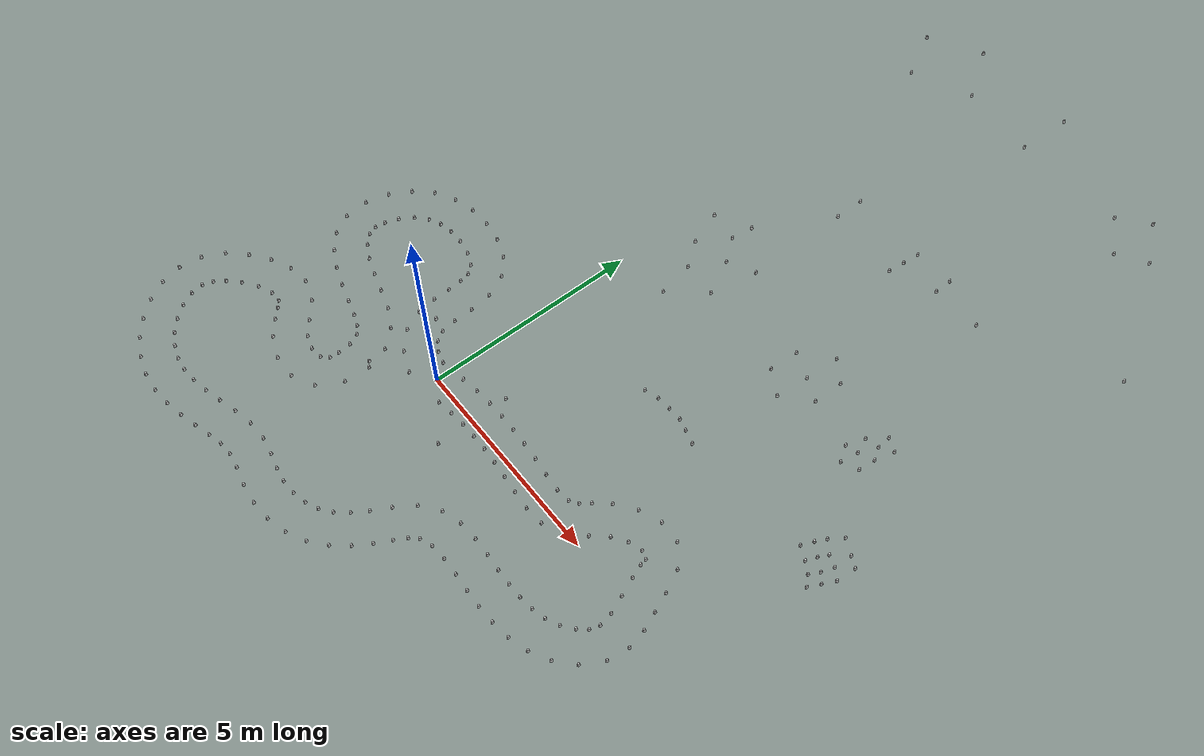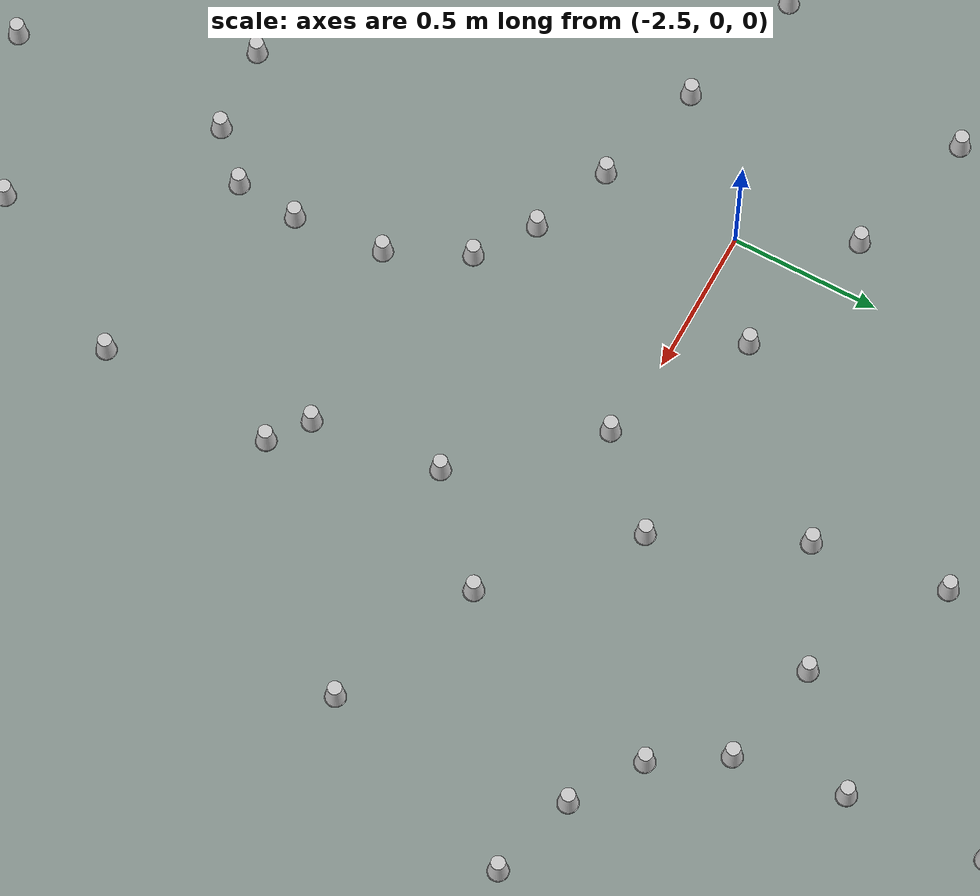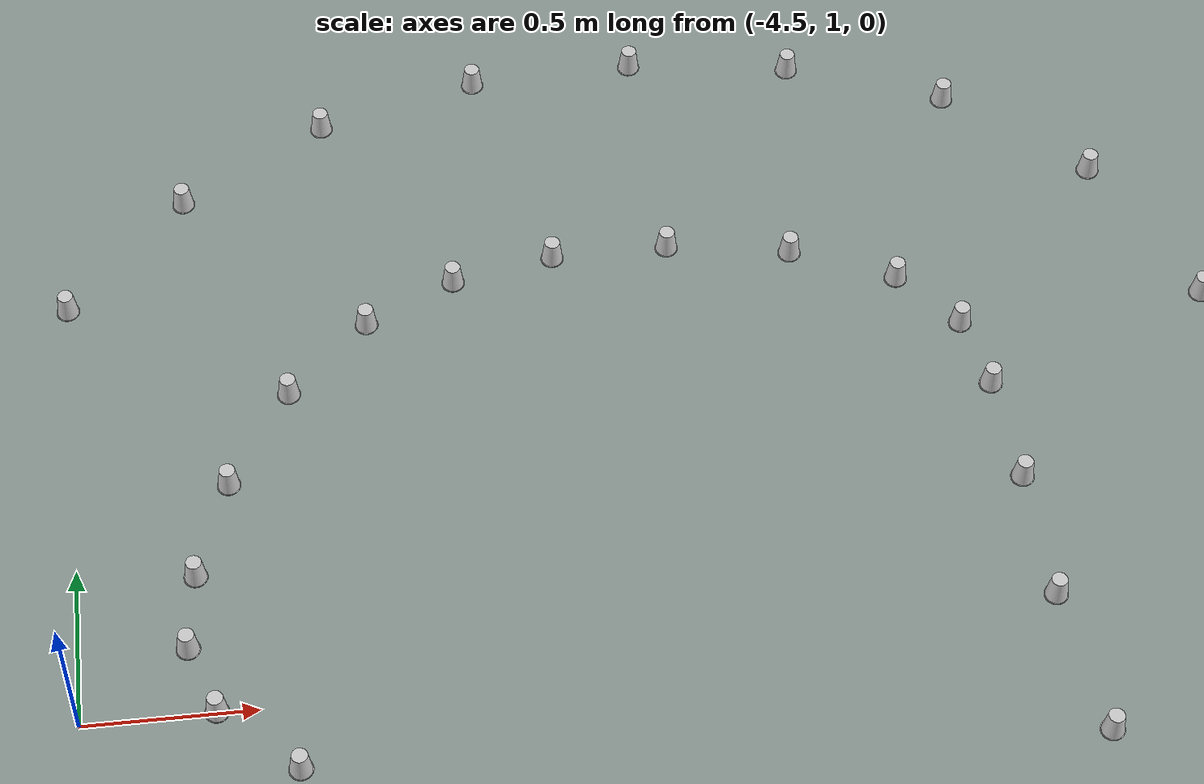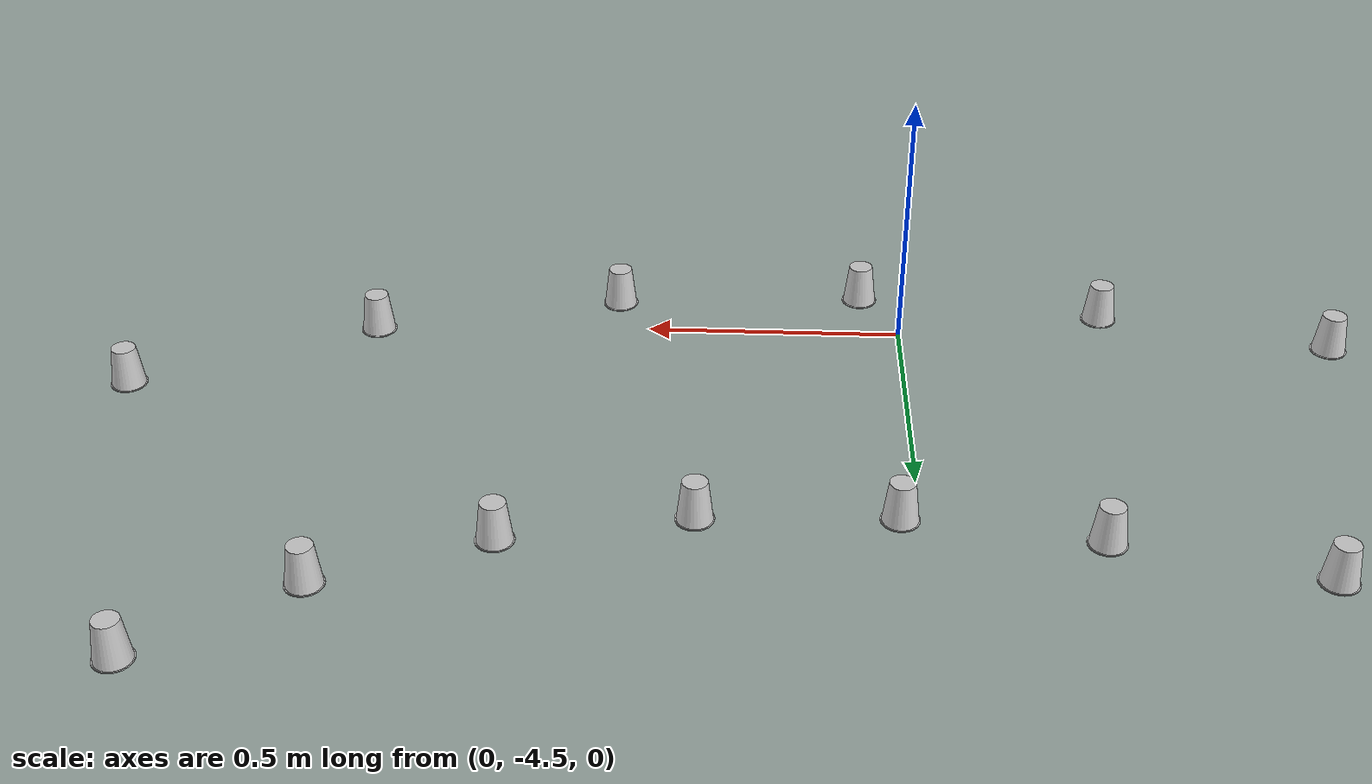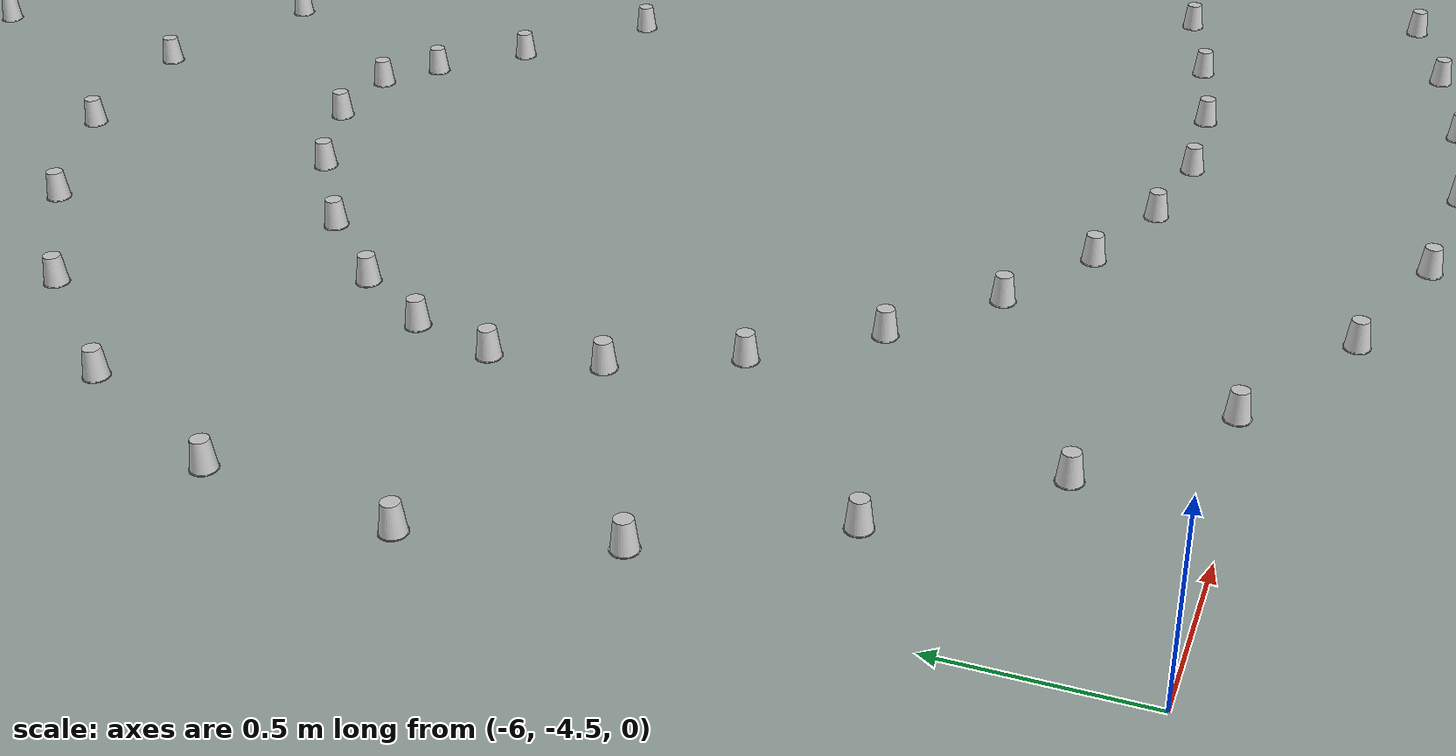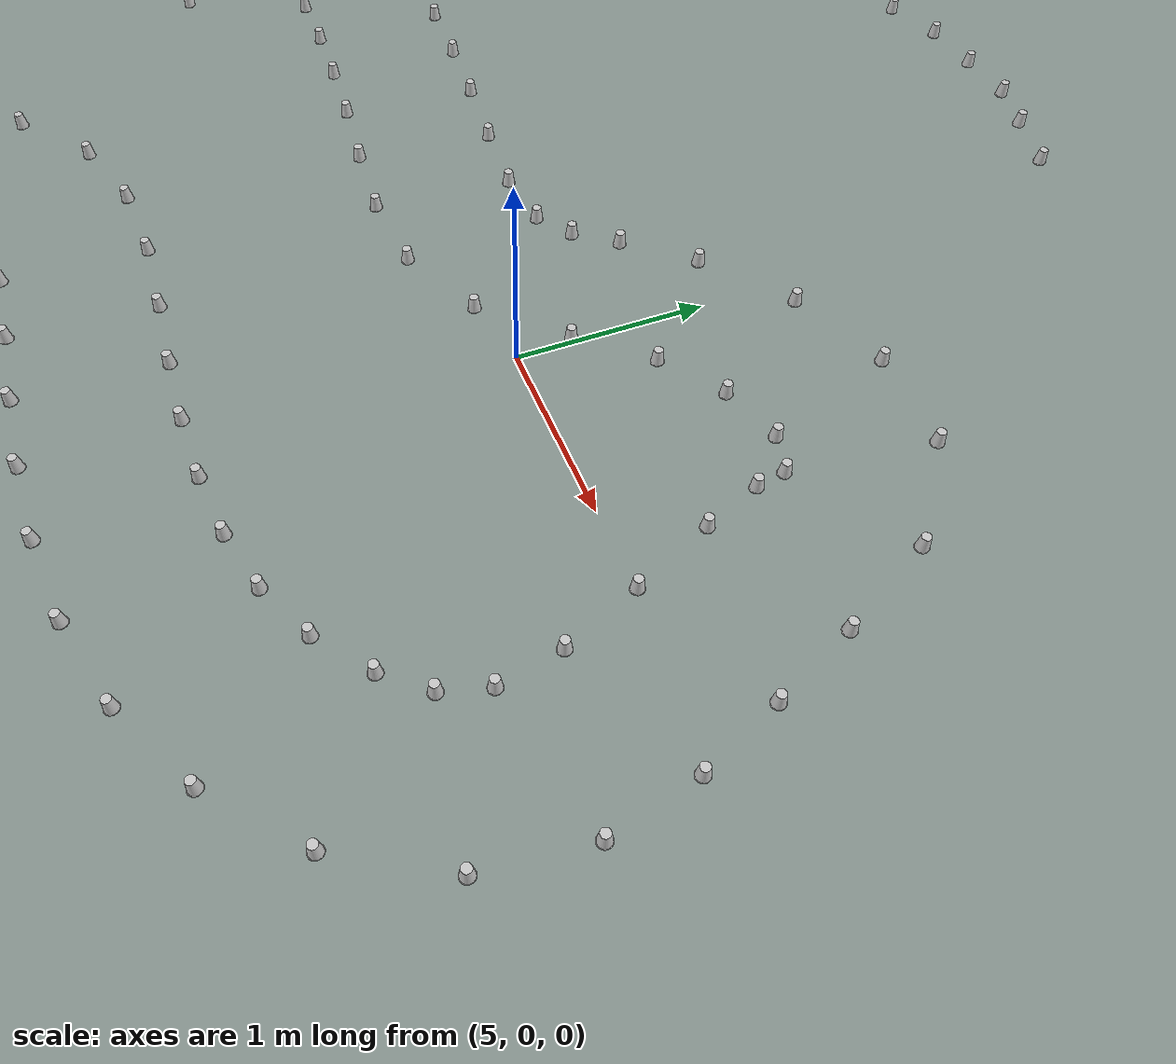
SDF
<?xml version='1.0' encoding='UTF-8'?>
<sdf version="1.4">
  <model name="some track">
    <include>
      <uri>model://cone_yellow</uri>
      <pose>0.4834223192615672 -0.28793069182123604 0 0 0 0</pose>
      <name>cone_right1</name>
    </include>
    <include>
      <uri>model://cone_yellow</uri>
      <pose>0.8660148553454698 -0.23472476890380725 0 0 0 0</pose>
      <name>cone_right2</name>
    </include>
    <include>
      <uri>model://cone_yellow</uri>
      <pose>1.2432822658689044 -0.20220780749883546 0 0 0 0</pose>
      <name>cone_right3</name>
    </include>
    <include>
      <uri>model://cone_yellow</uri>
      <pose>1.6203555029901875 -0.1884271734964398 0 0 0 0</pose>
      <name>cone_right4</name>
    </include>
    <include>
      <uri>model://cone_yellow</uri>
      <pose>2.0023037663141636 -0.19158308370193497 0 0 0 0</pose>
      <name>cone_right5</name>
    </include>
    <include>
      <uri>model://cone_yellow</uri>
      <pose>2.394023457823989 -0.20998335203586982 0 0 0 0</pose>
      <name>cone_right6</name>
    </include>
    <include>
      <uri>model://cone_yellow</uri>
      <pose>2.800177084140201 -0.2419735489785014 0 0 0 0</pose>
      <name>cone_right7</name>
    </include>
    <include>
      <uri>model://cone_yellow</uri>
      <pose>3.2251920668368412 -0.2857320720363028 0 0 0 0</pose>
      <name>cone_right8</name>
    </include>
    <include>
      <uri>model://cone_yellow</uri>
      <pose>3.673081133831503 -0.32136723357678976 0 0 0 0</pose>
      <name>cone_right9</name>
    </include>
    <include>
      <uri>model://cone_yellow</uri>
      <pose>4.139131296335913 -0.2862608365216882 0 0 0 0</pose>
      <name>cone_right10</name>
    </include>
    <include>
      <uri>model://cone_yellow</uri>
      <pose>4.604527058499592 -0.07937368283623886 0 0 0 0</pose>
      <name>cone_right11</name>
    </include>
    <include>
      <uri>model://cone_yellow</uri>
      <pose>4.976737265968248 0.2970096066480042 0 0 0 0</pose>
      <name>cone_right12</name>
    </include>
    <include>
      <uri>model://cone_yellow</uri>
      <pose>5.267185332768795 0.6315184053167547 0 0 0 0</pose>
      <name>cone_right13</name>
    </include>
    <include>
      <uri>model://cone_yellow</uri>
      <pose>5.581061234147173 0.846763641960613 0 0 0 0</pose>
      <name>cone_right14</name>
    </include>
    <include>
      <uri>model://cone_yellow</uri>
      <pose>5.904009847384209 0.9416676785124869 0 0 0 0</pose>
      <name>cone_right15</name>
    </include>
    <include>
      <uri>model://cone_yellow</uri>
      <pose>6.105918938256118 0.8783726840546857 0 0 0 0</pose>
      <name>cone_right16</name>
    </include>
    <include>
      <uri>model://cone_yellow</uri>
      <pose>6.135263695684905 0.7233950904108926 0 0 0 0</pose>
      <name>cone_right17</name>
    </include>
    <include>
      <uri>model://cone_yellow</uri>
      <pose>6.25472738134689 0.4212970748979713 0 0 0 0</pose>
      <name>cone_right18</name>
    </include>
    <include>
      <uri>model://cone_yellow</uri>
      <pose>6.43651411509581 0.007205503279659603 0 0 0 0</pose>
      <name>cone_right19</name>
    </include>
    <include>
      <uri>model://cone_yellow</uri>
      <pose>6.599344256555836 -0.3875459715878455 0 0 0 0</pose>
      <name>cone_right20</name>
    </include>
    <include>
      <uri>model://cone_yellow</uri>
      <pose>6.663712222514379 -0.709443428472346 0 0 0 0</pose>
      <name>cone_right21</name>
    </include>
    <include>
      <uri>model://cone_yellow</uri>
      <pose>6.599324048439171 -0.9379851255765359 0 0 0 0</pose>
      <name>cone_right22</name>
    </include>
    <include>
      <uri>model://cone_yellow</uri>
      <pose>6.431897919561025 -1.1361516267119594 0 0 0 0</pose>
      <name>cone_right23</name>
    </include>
    <include>
      <uri>model://cone_yellow</uri>
      <pose>6.173526360391975 -1.3369792033253298 0 0 0 0</pose>
      <name>cone_right24</name>
    </include>
    <include>
      <uri>model://cone_yellow</uri>
      <pose>5.872023999189865 -1.4777009239062198 0 0 0 0</pose>
      <name>cone_right25</name>
    </include>
    <include>
      <uri>model://cone_yellow</uri>
      <pose>5.54505084394509 -1.558815601963924 0 0 0 0</pose>
      <name>cone_right26</name>
    </include>
    <include>
      <uri>model://cone_yellow</uri>
      <pose>5.193290986583241 -1.5964953086788238 0 0 0 0</pose>
      <name>cone_right27</name>
    </include>
    <include>
      <uri>model://cone_yellow</uri>
      <pose>4.826379161660787 -1.6032082817775666 0 0 0 0</pose>
      <name>cone_right28</name>
    </include>
    <include>
      <uri>model://cone_yellow</uri>
      <pose>4.444103309965589 -1.5887228256598847 0 0 0 0</pose>
      <name>cone_right29</name>
    </include>
    <include>
      <uri>model://cone_yellow</uri>
      <pose>4.033220373937989 -1.5627023179616848 0 0 0 0</pose>
      <name>cone_right30</name>
    </include>
    <include>
      <uri>model://cone_yellow</uri>
      <pose>3.58654219935439 -1.5438364222533334 0 0 0 0</pose>
      <name>cone_right31</name>
    </include>
    <include>
      <uri>model://cone_yellow</uri>
      <pose>3.119596404151952 -1.5741158007487797 0 0 0 0</pose>
      <name>cone_right32</name>
    </include>
    <include>
      <uri>model://cone_yellow</uri>
      <pose>2.655997785389075 -1.7124643024939594 0 0 0 0</pose>
      <name>cone_right33</name>
    </include>
    <include>
      <uri>model://cone_yellow</uri>
      <pose>2.236074192773585 -2.0349587289181996 0 0 0 0</pose>
      <name>cone_right34</name>
    </include>
    <include>
      <uri>model://cone_yellow</uri>
      <pose>1.9409286831973582 -2.4674854652747924 0 0 0 0</pose>
      <name>cone_right35</name>
    </include>
    <include>
      <uri>model://cone_yellow</uri>
      <pose>1.7227150132841178 -2.86882567085488 0 0 0 0</pose>
      <name>cone_right36</name>
    </include>
    <include>
      <uri>model://cone_yellow</uri>
      <pose>1.5128480568535454 -3.2045241859991442 0 0 0 0</pose>
      <name>cone_right37</name>
    </include>
    <include>
      <uri>model://cone_yellow</uri>
      <pose>1.2839361964917777 -3.4756216948214576 0 0 0 0</pose>
      <name>cone_right38</name>
    </include>
    <include>
      <uri>model://cone_yellow</uri>
      <pose>1.025346851002618 -3.6707709850603862 0 0 0 0</pose>
      <name>cone_right39</name>
    </include>
    <include>
      <uri>model://cone_yellow</uri>
      <pose>0.7266943647255486 -3.8002408303627853 0 0 0 0</pose>
      <name>cone_right40</name>
    </include>
    <include>
      <uri>model://cone_yellow</uri>
      <pose>0.3889141328377584 -3.8741386305097585 0 0 0 0</pose>
      <name>cone_right41</name>
    </include>
    <include>
      <uri>model://cone_yellow</uri>
      <pose>0.03447631676477414 -3.8861739531590285 0 0 0 0</pose>
      <name>cone_right42</name>
    </include>
    <include>
      <uri>model://cone_yellow</uri>
      <pose>-0.3126565326163486 -3.834879413479813 0 0 0 0</pose>
      <name>cone_right43</name>
    </include>
    <include>
      <uri>model://cone_yellow</uri>
      <pose>-0.6775282679452043 -3.7483275354689924 0 0 0 0</pose>
      <name>cone_right44</name>
    </include>
    <include>
      <uri>model://cone_yellow</uri>
      <pose>-1.0993073005211618 -3.679219478593075 0 0 0 0</pose>
      <name>cone_right45</name>
    </include>
    <include>
      <uri>model://cone_yellow</uri>
      <pose>-1.5779179586342182 -3.6942836654222395 0 0 0 0</pose>
      <name>cone_right46</name>
    </include>
    <include>
      <uri>model://cone_yellow</uri>
      <pose>-2.04159627378646 -3.7876419534511863 0 0 0 0</pose>
      <name>cone_right47</name>
    </include>
    <include>
      <uri>model://cone_yellow</uri>
      <pose>-2.4691003271557452 -3.9054175431759433 0 0 0 0</pose>
      <name>cone_right48</name>
    </include>
    <include>
      <uri>model://cone_yellow</uri>
      <pose>-2.8697142835054383 -4.011874292432732 0 0 0 0</pose>
      <name>cone_right49</name>
    </include>
    <include>
      <uri>model://cone_yellow</uri>
      <pose>-3.2495775570546366 -4.0863410510965865 0 0 0 0</pose>
      <name>cone_right50</name>
    </include>
    <include>
      <uri>model://cone_yellow</uri>
      <pose>-3.6062194242117607 -4.110132825315085 0 0 0 0</pose>
      <name>cone_right51</name>
    </include>
    <include>
      <uri>model://cone_yellow</uri>
      <pose>-3.9385928625579196 -4.069407435878303 0 0 0 0</pose>
      <name>cone_right52</name>
    </include>
    <include>
      <uri>model://cone_yellow</uri>
      <pose>-4.255707154273494 -3.9628878544856723 0 0 0 0</pose>
      <name>cone_right53</name>
    </include>
    <include>
      <uri>model://cone_yellow</uri>
      <pose>-4.557744661139464 -3.792834577494556 0 0 0 0</pose>
      <name>cone_right54</name>
    </include>
    <include>
      <uri>model://cone_yellow</uri>
      <pose>-4.83305620551467 -3.5615408337604615 0 0 0 0</pose>
      <name>cone_right55</name>
    </include>
    <include>
      <uri>model://cone_yellow</uri>
      <pose>-5.065753423126327 -3.275981446079383 0 0 0 0</pose>
      <name>cone_right56</name>
    </include>
    <include>
      <uri>model://cone_yellow</uri>
      <pose>-5.221155126720023 -2.96531115513226 0 0 0 0</pose>
      <name>cone_right57</name>
    </include>
    <include>
      <uri>model://cone_yellow</uri>
      <pose>-5.265796354457953 -2.6736742489879526 0 0 0 0</pose>
      <name>cone_right58</name>
    </include>
    <include>
      <uri>model://cone_yellow</uri>
      <pose>-5.194714715346289 -2.434991175228284 0 0 0 0</pose>
      <name>cone_right59</name>
    </include>
    <include>
      <uri>model://cone_yellow</uri>
      <pose>-5.033061724898891 -2.1984383723184213 0 0 0 0</pose>
      <name>cone_right60</name>
    </include>
    <include>
      <uri>model://cone_yellow</uri>
      <pose>-4.778987591015468 -1.9468451058664602 0 0 0 0</pose>
      <name>cone_right61</name>
    </include>
    <include>
      <uri>model://cone_yellow</uri>
      <pose>-4.4557435328719865 -1.7172150168994182 0 0 0 0</pose>
      <name>cone_right62</name>
    </include>
    <include>
      <uri>model://cone_yellow</uri>
      <pose>-4.122959751248334 -1.5747262960258581 0 0 0 0</pose>
      <name>cone_right63</name>
    </include>
    <include>
      <uri>model://cone_yellow</uri>
      <pose>-3.855399161594351 -1.5673658953342788 0 0 0 0</pose>
      <name>cone_right64</name>
    </include>
    <include>
      <uri>model://cone_yellow</uri>
      <pose>-3.705501102214204 -1.6827017731366363 0 0 0 0</pose>
      <name>cone_right65</name>
    </include>
    <include>
      <uri>model://cone_yellow</uri>
      <pose>-3.4912117779128153 -1.8883441670213146 0 0 0 0</pose>
      <name>cone_right66</name>
    </include>
    <include>
      <uri>model://cone_yellow</uri>
      <pose>-3.133366615658319 -2.166263093393713 0 0 0 0</pose>
      <name>cone_right67</name>
    </include>
    <include>
      <uri>model://cone_yellow</uri>
      <pose>-2.6122782458438554 -2.376817070417715 0 0 0 0</pose>
      <name>cone_right68</name>
    </include>
    <include>
      <uri>model://cone_yellow</uri>
      <pose>-2.0396847017017596 -2.388498783711688 0 0 0 0</pose>
      <name>cone_right69</name>
    </include>
    <include>
      <uri>model://cone_yellow</uri>
      <pose>-1.516827608909085 -2.1246758055559147 0 0 0 0</pose>
      <name>cone_right70</name>
    </include>
    <include>
      <uri>model://cone_yellow</uri>
      <pose>-1.2044264523644719 -1.567148076507246 0 0 0 0</pose>
      <name>cone_right71</name>
    </include>
    <include>
      <uri>model://cone_yellow</uri>
      <pose>-1.1738020031487055 -0.9679770421285014 0 0 0 0</pose>
      <name>cone_right72</name>
    </include>
    <include>
      <uri>model://cone_yellow</uri>
      <pose>-1.3483379372796278 -0.43987944011843827 0 0 0 0</pose>
      <name>cone_right73</name>
    </include>
    <include>
      <uri>model://cone_yellow</uri>
      <pose>-1.7194188894715186 -0.0353240646921445 0 0 0 0</pose>
      <name>cone_right74</name>
    </include>
    <include>
      <uri>model://cone_yellow</uri>
      <pose>-2.1949865960549353 0.20701489058752226 0 0 0 0</pose>
      <name>cone_right75</name>
    </include>
    <include>
      <uri>model://cone_yellow</uri>
      <pose>-2.6801436556942395 0.35390620786064936 0 0 0 0</pose>
      <name>cone_right76</name>
    </include>
    <include>
      <uri>model://cone_yellow</uri>
      <pose>-3.14157054821582 0.48218941301005097 0 0 0 0</pose>
      <name>cone_right77</name>
    </include>
    <include>
      <uri>model://cone_yellow</uri>
      <pose>-3.5600716158219807 0.6282610463792289 0 0 0 0</pose>
      <name>cone_right78</name>
    </include>
    <include>
      <uri>model://cone_yellow</uri>
      <pose>-3.901710073388931 0.8038629667743893 0 0 0 0</pose>
      <name>cone_right79</name>
    </include>
    <include>
      <uri>model://cone_yellow</uri>
      <pose>-4.121162388274387 1.0058040518493083 0 0 0 0</pose>
      <name>cone_right80</name>
    </include>
    <include>
      <uri>model://cone_yellow</uri>
      <pose>-4.193049162271053 1.2135009723284285 0 0 0 0</pose>
      <name>cone_right81</name>
    </include>
    <include>
      <uri>model://cone_yellow</uri>
      <pose>-4.163077314678172 1.4483587996315594 0 0 0 0</pose>
      <name>cone_right82</name>
    </include>
    <include>
      <uri>model://cone_yellow</uri>
      <pose>-4.055715705573647 1.7513435080545088 0 0 0 0</pose>
      <name>cone_right83</name>
    </include>
    <include>
      <uri>model://cone_yellow</uri>
      <pose>-3.8645940745152583 2.056464888741824 0 0 0 0</pose>
      <name>cone_right84</name>
    </include>
    <include>
      <uri>model://cone_yellow</uri>
      <pose>-3.6172663337053574 2.289259013026721 0 0 0 0</pose>
      <name>cone_right85</name>
    </include>
    <include>
      <uri>model://cone_yellow</uri>
      <pose>-3.3430740853076277 2.422179756574597 0 0 0 0</pose>
      <name>cone_right86</name>
    </include>
    <include>
      <uri>model://cone_yellow</uri>
      <pose>-3.032335708444849 2.4851807995459736 0 0 0 0</pose>
      <name>cone_right87</name>
    </include>
    <include>
      <uri>model://cone_yellow</uri>
      <pose>-2.6787532317324696 2.4881731694654716 0 0 0 0</pose>
      <name>cone_right88</name>
    </include>
    <include>
      <uri>model://cone_yellow</uri>
      <pose>-2.305514930208221 2.428723455740836 0 0 0 0</pose>
      <name>cone_right89</name>
    </include>
    <include>
      <uri>model://cone_yellow</uri>
      <pose>-1.9979153536963588 2.297098698771249 0 0 0 0</pose>
      <name>cone_right90</name>
    </include>
    <include>
      <uri>model://cone_yellow</uri>
      <pose>-1.8345442467293007 2.108484043669222 0 0 0 0</pose>
      <name>cone_right91</name>
    </include>
    <include>
      <uri>model://cone_yellow</uri>
      <pose>-1.7862677395647566 1.8763450104832124 0 0 0 0</pose>
      <name>cone_right92</name>
    </include>
    <include>
      <uri>model://cone_yellow</uri>
      <pose>-1.7599019814446635 1.5386120124869895 0 0 0 0</pose>
      <name>cone_right93</name>
    </include>
    <include>
      <uri>model://cone_yellow</uri>
      <pose>-1.7464368816722788 1.1346099207590994 0 0 0 0</pose>
      <name>cone_right94</name>
    </include>
    <include>
      <uri>model://cone_yellow</uri>
      <pose>-1.6836857132466971 0.6909103747625038 0 0 0 0</pose>
      <name>cone_right95</name>
    </include>
    <include>
      <uri>model://cone_yellow</uri>
      <pose>-1.4618734143422605 0.22414574540250887 0 0 0 0</pose>
      <name>cone_right96</name>
    </include>
    <include>
      <uri>model://cone_yellow</uri>
      <pose>-1.0417738391041782 -0.15384828249830906 0 0 0 0</pose>
      <name>cone_right97</name>
    </include>
    <include>
      <uri>model://cone_yellow</uri>
      <pose>-0.5330159547797239 -0.3584777253906269 0 0 0 0</pose>
      <name>cone_right98</name>
    </include>
    <include>
      <uri>model://cone_yellow</uri>
      <pose>7.091993094317246 6.616086892085171 0 0 0 0</pose>
      <name>cone_right99</name>
    </include>
    <include>
      <uri>model://cone_yellow</uri>
      <pose>7.412330976201899 6.478799228420321 0 0 0 0</pose>
      <name>cone_right100</name>
    </include>
    <include>
      <uri>model://cone_yellow</uri>
      <pose>7.297924589814521 6.021173682870817 0 0 0 0</pose>
      <name>cone_right101</name>
    </include>
    <include>
      <uri>model://cone_yellow</uri>
      <pose>7.122501464020548 6.29574901020052 0 0 0 0</pose>
      <name>cone_right102</name>
    </include>
    <include>
      <uri>model://cone_yellow</uri>
      <pose>6.794536489710069 6.219478085942271 0 0 0 0</pose>
      <name>cone_right103</name>
    </include>
    <include>
      <uri>model://cone_yellow</uri>
      <pose>6.9470783382265715 5.868631834354318 0 0 0 0</pose>
      <name>cone_right104</name>
    </include>
    <include>
      <uri>model://cone_yellow</uri>
      <pose>7.259789127685398 5.624564876727916 0 0 0 0</pose>
      <name>cone_right105</name>
    </include>
    <include>
      <uri>model://cone_yellow</uri>
      <pose>6.657248826045219 5.784733817670244 0 0 0 0</pose>
      <name>cone_right106</name>
    </include>
    <include>
      <uri>model://cone_yellow</uri>
      <pose>6.886061598819971 5.441514658508119 0 0 0 0</pose>
      <name>cone_right107</name>
    </include>
    <include>
      <uri>model://cone_yellow</uri>
      <pose>4.941153030234586 7.058458252783023 0 0 0 0</pose>
      <name>cone_right108</name>
    </include>
    <include>
      <uri>model://cone_yellow</uri>
      <pose>5.459795315190689 6.7076120011950735 0 0 0 0</pose>
      <name>cone_right109</name>
    </include>
    <include>
      <uri>model://cone_yellow</uri>
      <pose>4.910644660531288 6.23473227079392 0 0 0 0</pose>
      <name>cone_right110</name>
    </include>
    <include>
      <uri>model://cone_yellow</uri>
      <pose>5.452168222764865 5.998292405593343 0 0 0 0</pose>
      <name>cone_right111</name>
    </include>
    <include>
      <uri>model://cone_yellow</uri>
      <pose>4.842000828698863 5.44914175093394 0 0 0 0</pose>
      <name>cone_right112</name>
    </include>
    <include>
      <uri>model://cone_yellow</uri>
      <pose>4.285223081613635 6.478799228420321 0 0 0 0</pose>
      <name>cone_right113</name>
    </include>
    <include>
      <uri>model://cone_yellow</uri>
      <pose>4.254714711910335 5.784733817670244 0 0 0 0</pose>
      <name>cone_right114</name>
    </include>
    <include>
      <uri>model://cone_yellow</uri>
      <pose>2.13307211102029 7.153081868190915 0 0 0 0</pose>
      <name>cone_right115</name>
    </include>
    <include>
      <uri>model://cone_yellow</uri>
      <pose>1.134995563109591 7.868121783112013 0 0 0 0</pose>
      <name>cone_right116</name>
    </include>
    <include>
      <uri>model://cone_yellow</uri>
      <pose>0.3305756588233564 7.436118501180516 0 0 0 0</pose>
      <name>cone_right117</name>
    </include>
    <include>
      <uri>model://cone_yellow</uri>
      <pose>1.4925155205701373 6.825355240518746 0 0 0 0</pose>
      <name>cone_right118</name>
    </include>
    <include>
      <uri>model://cone_yellow</uri>
      <pose>0.6285089567071473 6.631698596894282 0 0 0 0</pose>
      <name>cone_right119</name>
    </include>
    <include>
      <uri>model://cone_yellow</uri>
      <pose>1.2392722173689172 5.216515431946277 0 0 0 0</pose>
      <name>cone_right120</name>
    </include>
    <include>
      <uri>model://cone_yellow</uri>
      <pose>1.924518802501634 6.020935336232512 0 0 0 0</pose>
      <name>cone_right121</name>
    </include>
    <include>
      <uri>model://cone_yellow</uri>
      <pose>1.060512238638644 6.065625330915083 0 0 0 0</pose>
      <name>cone_right122</name>
    </include>
    <include>
      <uri>model://cone_yellow</uri>
      <pose>1.075408903532832 7.34673851181538 0 0 0 0</pose>
      <name>cone_right123</name>
    </include>
    <include>
      <uri>model://cone_yellow</uri>
      <pose>4.620815148349937 3.2948456605958327 0 0 0 0</pose>
      <name>cone_right124</name>
    </include>
    <include>
      <uri>model://cone_yellow</uri>
      <pose>4.2831574107483075 3.389191204925698 0 0 0 0</pose>
      <name>cone_right125</name>
    </include>
    <include>
      <uri>model://cone_yellow</uri>
      <pose>3.9976380002763428 3.4636745293966484 0 0 0 0</pose>
      <name>cone_right126</name>
    </include>
    <include>
      <uri>model://cone_yellow</uri>
      <pose>3.6624630401570784 3.451260641984824 0 0 0 0</pose>
      <name>cone_right127</name>
    </include>
    <include>
      <uri>model://cone_yellow</uri>
      <pose>3.3148741926259895 3.426432867161175 0 0 0 0</pose>
      <name>cone_right128</name>
    </include>
    <include>
      <uri>model://cone_yellow</uri>
      <pose>2.979699232506725 3.3271217678665757 0 0 0 0</pose>
      <name>cone_right129</name>
    </include>
    <include>
      <uri>model://cone_yellow</uri>
      <pose>6.194896072169298 10.01820708284003 0 0 0 0</pose>
      <name>cone_right130</name>
    </include>
    <include>
      <uri>model://cone_yellow</uri>
      <pose>4.9907489932223115 10.365795930371121 0 0 0 0</pose>
      <name>cone_right131</name>
    </include>
    <include>
      <uri>model://cone_yellow</uri>
      <pose>5.003162880634136 9.943723758369085 0 0 0 0</pose>
      <name>cone_right132</name>
    </include>
    <include>
      <uri>model://cone_yellow</uri>
      <pose>4.0224657750999935 10.303726493311999 0 0 0 0</pose>
      <name>cone_right133</name>
    </include>
    <include>
      <uri>model://cone_yellow</uri>
      <pose>3.98522411286452 9.906482096133612 0 0 0 0</pose>
      <name>cone_right134</name>
    </include>
    <include>
      <uri>model://cone_yellow</uri>
      <pose>3.9479824506290466 9.509237698955223 0 0 0 0</pose>
      <name>cone_right135</name>
    </include>
    <include>
      <uri>model://cone_yellow</uri>
      <pose>2.1107271136790047 10.291312605900174 0 0 0 0</pose>
      <name>cone_right136</name>
    </include>
    <include>
      <uri>model://cone_yellow</uri>
      <pose>2.1107271136790047 9.60854879824982 0 0 0 0</pose>
      <name>cone_right137</name>
    </include>
    <include>
      <uri>model://cone_yellow</uri>
      <pose>8.86168878089548 3.580872033233753 0 0 0 0</pose>
      <name>cone_right138</name>
    </include>
    <include>
      <uri>model://cone_yellow</uri>
      <pose>8.613889278465628 3.7460717015203215 0 0 0 0</pose>
      <name>cone_right139</name>
    </include>
    <include>
      <uri>model://cone_yellow</uri>
      <pose>8.724022390656671 3.2917726137322596 0 0 0 0</pose>
      <name>cone_right140</name>
    </include>
    <include>
      <uri>model://cone_yellow</uri>
      <pose>8.517522805298462 3.4569722820188282 0 0 0 0</pose>
      <name>cone_right141</name>
    </include>
    <include>
      <uri>model://cone_yellow</uri>
      <pose>8.338556497988014 3.842438174687487 0 0 0 0</pose>
      <name>cone_right142</name>
    </include>
    <include>
      <uri>model://cone_yellow</uri>
      <pose>8.228423385796969 3.6221719503053933 0 0 0 0</pose>
      <name>cone_right143</name>
    </include>
    <include>
      <uri>model://cone_yellow</uri>
      <pose>8.132056912629805 3.374372447875544 0 0 0 0</pose>
      <name>cone_right144</name>
    </include>
    <include>
      <uri>model://cone_yellow</uri>
      <pose>8.393623054083537 3.2229394186128566 0 0 0 0</pose>
      <name>cone_right145</name>
    </include>
    <include>
      <uri>model://cone_yellow</uri>
      <pose>8.586356000417865 3.0164398332546476 0 0 0 0</pose>
      <name>cone_right146</name>
    </include>
    <include>
      <uri>model://cone_yellow</uri>
      <pose>8.049457078486522 4.048937760045696 0 0 0 0</pose>
      <name>cone_right147</name>
    </include>
    <include>
      <uri>model://cone_yellow</uri>
      <pose>7.925557327271596 3.8011382576158432 0 0 0 0</pose>
      <name>cone_right148</name>
    </include>
    <include>
      <uri>model://cone_yellow</uri>
      <pose>7.815424215080551 3.5258054771382312 0 0 0 0</pose>
      <name>cone_right149</name>
    </include>
    <include>
      <uri>model://cone_yellow</uri>
      <pose>8.255956663844731 4.351803818571071 0 0 0 0</pose>
      <name>cone_right150</name>
    </include>
    <include>
      <uri>model://cone_yellow</uri>
      <pose>8.627655917489509 4.172837511260621 0 0 0 0</pose>
      <name>cone_right151</name>
    </include>
    <include>
      <uri>model://cone_yellow</uri>
      <pose>8.88922205894324 4.048937760045696 0 0 0 0</pose>
      <name>cone_right152</name>
    </include>
    <include>
      <uri>model://cone_yellow</uri>
      <pose>6.727859732193982 15.058807319394246 0 0 0 0</pose>
      <name>cone_right153</name>
    </include>
    <include>
      <uri>model://cone_yellow</uri>
      <pose>7.416191683388014 14.198392380401705 0 0 0 0</pose>
      <name>cone_right154</name>
    </include>
    <include>
      <uri>model://cone_yellow</uri>
      <pose>6.745068030973833 13.768184910905434 0 0 0 0</pose>
      <name>cone_right155</name>
    </include>
    <include>
      <uri>model://cone_yellow</uri>
      <pose>6.056736079779801 14.508141758439018 0 0 0 0</pose>
      <name>cone_right156</name>
    </include>
    <include>
      <uri>model://cone_yellow</uri>
      <pose>3.3550331713432264 15.626681179129323 0 0 0 0</pose>
      <name>cone_right157</name>
    </include>
    <include>
      <uri>model://cone_yellow</uri>
      <pose>3.3206165737835214 14.353267069420363 0 0 0 0</pose>
      <name>cone_right158</name>
    </include>
    <include>
      <uri>model://cone_yellow</uri>
      <pose>9.2058547564925 11.496689471965128 0 0 0 0</pose>
      <name>cone_right159</name>
    </include>
    <include>
      <uri>model://cone_yellow</uri>
      <pose>0.6501037068854281 15.616822257953368 0 0 0 0</pose>
      <name>cone_right160</name>
    </include>
    <include>
      <uri>model://cone_yellow</uri>
      <pose>1.4343360731546717 14.474083667103901 0 0 0 0</pose>
      <name>cone_right161</name>
    </include>
    <include>
      <uri>model://cone_yellow</uri>
      <pose>-0.5822614401090966 14.899809808792918 0 0 0 0</pose>
      <name>cone_right162</name>
    </include>
    <include>
      <uri>model://cone_yellow</uri>
      <pose>0.0003111748337687459 13.846697774088506 0 0 0 0</pose>
      <name>cone_right163</name>
    </include>
    <include>
      <uri>model://cone_blue</uri>
      <pose>0.34010837425348395 0.4482493902009687 0 0 0 0</pose>
      <name>cone_left1</name>
    </include>
    <include>
      <uri>model://cone_blue</uri>
      <pose>0.7617063696060558 0.5079863053388962 0 0 0 0</pose>
      <name>cone_left2</name>
    </include>
    <include>
      <uri>model://cone_blue</uri>
      <pose>1.1778699743905463 0.5449342353039708 0 0 0 0</pose>
      <name>cone_left3</name>
    </include>
    <include>
      <uri>model://cone_blue</uri>
      <pose>1.5920488823986665 0.5610384596253783 0 0 0 0</pose>
      <name>cone_left4</name>
    </include>
    <include>
      <uri>model://cone_blue</uri>
      <pose>2.0077545399755996 0.5583971087475001 0 0 0 0</pose>
      <name>cone_left5</name>
    </include>
    <include>
      <uri>model://cone_blue</uri>
      <pose>2.428671191088216 0.5392159102299515 0 0 0 0</pose>
      <name>cone_left6</name>
    </include>
    <include>
      <uri>model://cone_blue</uri>
      <pose>2.8587169750660077 0.5057383481920563 0 0 0 0</pose>
      <name>cone_left7</name>
    </include>
    <include>
      <uri>model://cone_blue</uri>
      <pose>3.30181239418623 0.4603438794839646 0 0 0 0</pose>
      <name>cone_left8</name>
    </include>
    <include>
      <uri>model://cone_blue</uri>
      <pose>3.7323975561796665 0.42628346162773845 0 0 0 0</pose>
      <name>cone_left9</name>
    </include>
    <include>
      <uri>model://cone_blue</uri>
      <pose>4.074619785352068 0.46095952250942196 0 0 0 0</pose>
      <name>cone_left10</name>
    </include>
    <include>
      <uri>model://cone_blue</uri>
      <pose>4.263089514858745 0.588399035828207 0 0 0 0</pose>
      <name>cone_left11</name>
    </include>
    <include>
      <uri>model://cone_blue</uri>
      <pose>4.419428041210761 0.7989124139724975 0 0 0 0</pose>
      <name>cone_left12</name>
    </include>
    <include>
      <uri>model://cone_blue</uri>
      <pose>4.700802168067835 1.1231586302204184 0 0 0 0</pose>
      <name>cone_left13</name>
    </include>
    <include>
      <uri>model://cone_blue</uri>
      <pose>5.141113411010002 1.4541728227579276 0 0 0 0</pose>
      <name>cone_left14</name>
    </include>
    <include>
      <uri>model://cone_blue</uri>
      <pose>5.6585323955227125 1.6503571878376828 0 0 0 0</pose>
      <name>cone_left15</name>
    </include>
    <include>
      <uri>model://cone_blue</uri>
      <pose>6.197245347436927 1.6227915762022047 0 0 0 0</pose>
      <name>cone_left16</name>
    </include>
    <include>
      <uri>model://cone_blue</uri>
      <pose>6.67891669198438 1.2400588298145825 0 0 0 0</pose>
      <name>cone_left17</name>
    </include>
    <include>
      <uri>model://cone_blue</uri>
      <pose>6.934412122716137 0.7383596118679195 0 0 0 0</pose>
      <name>cone_left18</name>
    </include>
    <include>
      <uri>model://cone_blue</uri>
      <pose>7.123189143337231 0.30883011366423085 0 0 0 0</pose>
      <name>cone_left19</name>
    </include>
    <include>
      <uri>model://cone_blue</uri>
      <pose>7.292612982041709 -0.10140182214006771 0 0 0 0</pose>
      <name>cone_left20</name>
    </include>
    <include>
      <uri>model://cone_blue</uri>
      <pose>7.396431382913555 -0.5493727191469805 0 0 0 0</pose>
      <name>cone_left21</name>
    </include>
    <include>
      <uri>model://cone_blue</uri>
      <pose>7.33939489580536 -1.059620403677472 0 0 0 0</pose>
      <name>cone_left22</name>
    </include>
    <include>
      <uri>model://cone_blue</uri>
      <pose>7.059951216137766 -1.5460894959788625 0 0 0 0</pose>
      <name>cone_left23</name>
    </include>
    <include>
      <uri>model://cone_blue</uri>
      <pose>6.660754770737405 -1.9071620478166955 0 0 0 0</pose>
      <name>cone_left24</name>
    </include>
    <include>
      <uri>model://cone_blue</uri>
      <pose>6.210749022999184 -2.1468536405900696 0 0 0 0</pose>
      <name>cone_left25</name>
    </include>
    <include>
      <uri>model://cone_blue</uri>
      <pose>5.742169099532328 -2.282448377143603 0 0 0 0</pose>
      <name>cone_left26</name>
    </include>
    <include>
      <uri>model://cone_blue</uri>
      <pose>5.281773191141109 -2.3412576194039163 0 0 0 0</pose>
      <name>cone_left27</name>
    </include>
    <include>
      <uri>model://cone_blue</uri>
      <pose>4.843577080935209 -2.353011076899478 0 0 0 0</pose>
      <name>cone_left28</name>
    </include>
    <include>
      <uri>model://cone_blue</uri>
      <pose>4.416986705277942 -2.3382324585200727 0 0 0 0</pose>
      <name>cone_left29</name>
    </include>
    <include>
      <uri>model://cone_blue</uri>
      <pose>3.9860631164546407 -2.311218311823305 0 0 0 0</pose>
      <name>cone_left30</name>
    </include>
    <include>
      <uri>model://cone_blue</uri>
      <pose>3.5550305587357944 -2.293174140845908 0 0 0 0</pose>
      <name>cone_left31</name>
    </include>
    <include>
      <uri>model://cone_blue</uri>
      <pose>3.171871639382531 -2.3222917825749723 0 0 0 0</pose>
      <name>cone_left32</name>
    </include>
    <include>
      <uri>model://cone_blue</uri>
      <pose>2.8867835652283107 -2.426073385833007 0 0 0 0</pose>
      <name>cone_left33</name>
    </include>
    <include>
      <uri>model://cone_blue</uri>
      <pose>2.7250135085964287 -2.6036751305127814 0 0 0 0</pose>
      <name>cone_left34</name>
    </include>
    <include>
      <uri>model://cone_blue</uri>
      <pose>2.5729904092383884 -2.8712155415312366 0 0 0 0</pose>
      <name>cone_left35</name>
    </include>
    <include>
      <uri>model://cone_blue</uri>
      <pose>2.382391463823783 -3.2256547344180775 0 0 0 0</pose>
      <name>cone_left36</name>
    </include>
    <include>
      <uri>model://cone_blue</uri>
      <pose>2.1495015397563964 -3.6009738583507174 0 0 0 0</pose>
      <name>cone_left37</name>
    </include>
    <include>
      <uri>model://cone_blue</uri>
      <pose>1.8615805266473338 -3.9539803759793717 0 0 0 0</pose>
      <name>cone_left38</name>
    </include>
    <include>
      <uri>model://cone_blue</uri>
      <pose>1.4918962504912425 -4.257994671432797 0 0 0 0</pose>
      <name>cone_left39</name>
    </include>
    <include>
      <uri>model://cone_blue</uri>
      <pose>1.0460227294001891 -4.478863992002749 0 0 0 0</pose>
      <name>cone_left40</name>
    </include>
    <include>
      <uri>model://cone_blue</uri>
      <pose>0.5653711738424073 -4.603085070709506 0 0 0 0</pose>
      <name>cone_left41</name>
    </include>
    <include>
      <uri>model://cone_blue</uri>
      <pose>0.07351214872118761 -4.63515740012129 0 0 0 0</pose>
      <name>cone_left42</name>
    </include>
    <include>
      <uri>model://cone_blue</uri>
      <pose>-0.40928336526547315 -4.578628870765126 0 0 0 0</pose>
      <name>cone_left43</name>
    </include>
    <include>
      <uri>model://cone_blue</uri>
      <pose>-0.847070284444556 -4.478913262568375 0 0 0 0</pose>
      <name>cone_left44</name>
    </include>
    <include>
      <uri>model://cone_blue</uri>
      <pose>-1.21909235700803 -4.41959204713032 0 0 0 0</pose>
      <name>cone_left45</name>
    </include>
    <include>
      <uri>model://cone_blue</uri>
      <pose>-1.5415653997234566 -4.4434021416732525 0 0 0 0</pose>
      <name>cone_left46</name>
    </include>
    <include>
      <uri>model://cone_blue</uri>
      <pose>-1.8860875221468836 -4.52134286537886 0 0 0 0</pose>
      <name>cone_left47</name>
    </include>
    <include>
      <uri>model://cone_blue</uri>
      <pose>-2.268741298623297 -4.628159723822357 0 0 0 0</pose>
      <name>cone_left48</name>
    </include>
    <include>
      <uri>model://cone_blue</uri>
      <pose>-2.677061359387118 -4.736708653392987 0 0 0 0</pose>
      <name>cone_left49</name>
    </include>
    <include>
      <uri>model://cone_blue</uri>
      <pose>-3.1038281732298323 -4.8220428365468395 0 0 0 0</pose>
      <name>cone_left50</name>
    </include>
    <include>
      <uri>model://cone_blue</uri>
      <pose>-3.550533785804254 -4.8580627081752015 0 0 0 0</pose>
      <name>cone_left51</name>
    </include>
    <include>
      <uri>model://cone_blue</uri>
      <pose>-4.0165540171635135 -4.815344469663704 0 0 0 0</pose>
      <name>cone_left52</name>
    </include>
    <include>
      <uri>model://cone_blue</uri>
      <pose>-4.478889985320561 -4.678911194835564 0 0 0 0</pose>
      <name>cone_left53</name>
    </include>
    <include>
      <uri>model://cone_blue</uri>
      <pose>-4.912774964364506 -4.45348083971961 0 0 0 0</pose>
      <name>cone_left54</name>
    </include>
    <include>
      <uri>model://cone_blue</uri>
      <pose>-5.3049284271594965 -4.144495897586118 0 0 0 0</pose>
      <name>cone_left55</name>
    </include>
    <include>
      <uri>model://cone_blue</uri>
      <pose>-5.638519613574666 -3.760170346281872 0 0 0 0</pose>
      <name>cone_left56</name>
    </include>
    <include>
      <uri>model://cone_blue</uri>
      <pose>-5.883495373784647 -3.3171710663446246 0 0 0 0</pose>
      <name>cone_left57</name>
    </include>
    <include>
      <uri>model://cone_blue</uri>
      <pose>-6.000362278319487 -2.825044336856887 0 0 0 0</pose>
      <name>cone_left58</name>
    </include>
    <include>
      <uri>model://cone_blue</uri>
      <pose>-5.932597118629176 -2.3007169821550435 0 0 0 0</pose>
      <name>cone_left59</name>
    </include>
    <include>
      <uri>model://cone_blue</uri>
      <pose>-5.682762594858785 -1.8237534652653635 0 0 0 0</pose>
      <name>cone_left60</name>
    </include>
    <include>
      <uri>model://cone_blue</uri>
      <pose>-5.32219507595727 -1.42971298705812 0 0 0 0</pose>
      <name>cone_left61</name>
    </include>
    <include>
      <uri>model://cone_blue</uri>
      <pose>-4.8991283625821485 -1.1123101543111833 0 0 0 0</pose>
      <name>cone_left62</name>
    </include>
    <include>
      <uri>model://cone_blue</uri>
      <pose>-4.433203794767286 -0.891902282490152 0 0 0 0</pose>
      <name>cone_left63</name>
    </include>
    <include>
      <uri>model://cone_blue</uri>
      <pose>-3.931082893380274 -0.8211943515570076 0 0 0 0</pose>
      <name>cone_left64</name>
    </include>
    <include>
      <uri>model://cone_blue</uri>
      <pose>-3.4101070535703926 -0.9933235344129168 0 0 0 0</pose>
      <name>cone_left65</name>
    </include>
    <include>
      <uri>model://cone_blue</uri>
      <pose>-3.003808457792044 -1.3183108315616687 0 0 0 0</pose>
      <name>cone_left66</name>
    </include>
    <include>
      <uri>model://cone_blue</uri>
      <pose>-2.673894686004276 -1.5734852717269527 0 0 0 0</pose>
      <name>cone_left67</name>
    </include>
    <include>
      <uri>model://cone_blue</uri>
      <pose>-2.3530552585575597 -1.673039092030803 0 0 0 0</pose>
      <name>cone_left68</name>
    </include>
    <include>
      <uri>model://cone_blue</uri>
      <pose>-2.059244686053399 -1.6387538890894147 0 0 0 0</pose>
      <name>cone_left69</name>
    </include>
    <include>
      <uri>model://cone_blue</uri>
      <pose>-1.9119533625721963 -1.4871998147984913 0 0 0 0</pose>
      <name>cone_left70</name>
    </include>
    <include>
      <uri>model://cone_blue</uri>
      <pose>-1.8940191121584466 -1.2722549372885263 0 0 0 0</pose>
      <name>cone_left71</name>
    </include>
    <include>
      <uri>model://cone_blue</uri>
      <pose>-1.9238016780191347 -0.9672786910344788 0 0 0 0</pose>
      <name>cone_left72</name>
    </include>
    <include>
      <uri>model://cone_blue</uri>
      <pose>-2.0493346727223187 -0.7065319797626171 0 0 0 0</pose>
      <name>cone_left73</name>
    </include>
    <include>
      <uri>model://cone_blue</uri>
      <pose>-2.2370901026173984 -0.5780178227915658 0 0 0 0</pose>
      <name>cone_left74</name>
    </include>
    <include>
      <uri>model://cone_blue</uri>
      <pose>-2.510241986966772 -0.4735099351911008 0 0 0 0</pose>
      <name>cone_left75</name>
    </include>
    <include>
      <uri>model://cone_blue</uri>
      <pose>-2.8916739682379555 -0.3656456852472472 0 0 0 0</pose>
      <name>cone_left76</name>
    </include>
    <include>
      <uri>model://cone_blue</uri>
      <pose>-3.3423997054893295 -0.2404222735746679 0 0 0 0</pose>
      <name>cone_left77</name>
    </include>
    <include>
      <uri>model://cone_blue</uri>
      <pose>-3.806034939449148 -0.08025997901823773 0 0 0 0</pose>
      <name>cone_left78</name>
    </include>
    <include>
      <uri>model://cone_blue</uri>
      <pose>-4.238880601279759 0.13392563006160368 0 0 0 0</pose>
      <name>cone_left79</name>
    </include>
    <include>
      <uri>model://cone_blue</uri>
      <pose>-4.608592549331545 0.435793667652851 0 0 0 0</pose>
      <name>cone_left80</name>
    </include>
    <include>
      <uri>model://cone_blue</uri>
      <pose>-4.862972658459932 0.8763029455636363 0 0 0 0</pose>
      <name>cone_left81</name>
    </include>
    <include>
      <uri>model://cone_blue</uri>
      <pose>-4.912838408162268 1.4294299143624052 0 0 0 0</pose>
      <name>cone_left82</name>
    </include>
    <include>
      <uri>model://cone_blue</uri>
      <pose>-4.775490077901532 1.9621155482780643 0 0 0 0</pose>
      <name>cone_left83</name>
    </include>
    <include>
      <uri>model://cone_blue</uri>
      <pose>-4.512168832293813 2.434812523976995 0 0 0 0</pose>
      <name>cone_left84</name>
    </include>
    <include>
      <uri>model://cone_blue</uri>
      <pose>-4.150041595812255 2.817132596460223 0 0 0 0</pose>
      <name>cone_left85</name>
    </include>
    <include>
      <uri>model://cone_blue</uri>
      <pose>-3.704010691558802 3.079617788839148 0 0 0 0</pose>
      <name>cone_left86</name>
    </include>
    <include>
      <uri>model://cone_blue</uri>
      <pose>-3.2108536657816473 3.2136252647650436 0 0 0 0</pose>
      <name>cone_left87</name>
    </include>
    <include>
      <uri>model://cone_blue</uri>
      <pose>-2.7023780424489874 3.23780098933251 0 0 0 0</pose>
      <name>cone_left88</name>
    </include>
    <include>
      <uri>model://cone_blue</uri>
      <pose>-2.198703355775403 3.1710786857804596 0 0 0 0</pose>
      <name>cone_left89</name>
    </include>
    <include>
      <uri>model://cone_blue</uri>
      <pose>-1.7236138221510537 2.995137859414762 0 0 0 0</pose>
      <name>cone_left90</name>
    </include>
    <include>
      <uri>model://cone_blue</uri>
      <pose>-1.3225929679350252 2.6565769994175206 0 0 0 0</pose>
      <name>cone_left91</name>
    </include>
    <include>
      <uri>model://cone_blue</uri>
      <pose>-1.08587712729694 2.1445855559775744 0 0 0 0</pose>
      <name>cone_left92</name>
    </include>
    <include>
      <uri>model://cone_blue</uri>
      <pose>-1.014691079617832 1.623233001599859 0 0 0 0</pose>
      <name>cone_left93</name>
    </include>
    <include>
      <uri>model://cone_blue</uri>
      <pose>-0.9969246112022959 1.1616535228662772 0 0 0 0</pose>
      <name>cone_left94</name>
    </include>
    <include>
      <uri>model://cone_blue</uri>
      <pose>-0.9416107203791773 0.7996518340164156 0 0 0 0</pose>
      <name>cone_left95</name>
    </include>
    <include>
      <uri>model://cone_blue</uri>
      <pose>-0.7983909149443591 0.5738470079005357 0 0 0 0</pose>
      <name>cone_left96</name>
    </include>
    <include>
      <uri>model://cone_blue</uri>
      <pose>-0.5711359742329729 0.4301037704559323 0 0 0 0</pose>
      <name>cone_left97</name>
    </include>
    <include>
      <uri>model://cone_blue</uri>
      <pose>-0.27958910239465873 0.3474081226685323 0 0 0 0</pose>
      <name>cone_left98</name>
    </include>
    <include>
      <uri>model://cone_orange_big</uri>
      <pose>-1.3 0.875 0 0 0 0</pose>
      <name>cone_orange_big1</name>
    </include>
    <include>
      <uri>model://cone_orange_big</uri>
      <pose>-1.3 -0.875 0 0 0 0</pose>
      <name>cone_orange_big2</name>
    </include>
    <include>
      <uri>model://cone_orange_big</uri>
      <pose>1.3 0.875 0 0 0 0</pose>
      <name>cone_orange_big3</name>
    </include>
    <include>
      <uri>model://cone_orange_big</uri>
      <pose>1.3 -0.875 0 0 0 0</pose>
      <name>cone_orange_big4</name>
    </include>
  </model>
</sdf>

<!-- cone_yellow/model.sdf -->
<sdf version='1.4'>
  <model name="cone_yellow">
    <link name="link">
    <collision name="collision"><geometry><box><size> 0.05 0.05 0.01</size>
             </box></geometry></collision>
      <visual name="visual">
        <geometry>
          <mesh>
            <uri>model://cup.dae</uri>
            <scale>1 1 1</scale>
          </mesh>
        </geometry>
        <material>
            <script>
              <uri>model://cone_yellow/materials/scripts</uri>
              <uri>model://cone_yellow/materials/textures</uri>
              <name>cone_yellow/Image</name>
            </script>
        </material>
      </visual>
    </link>
  </model>
</sdf>

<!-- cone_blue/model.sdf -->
<sdf version='1.4'>
  <model name="cone_blue">
    <link name="link">
    <collision name="collision"><geometry><box><size> 0.05 0.05 0.01</size>
             </box></geometry></collision>
      <visual name="visual">
        <geometry>
          <mesh>
            <uri>model://cup.dae</uri>
            <scale>1 1 1</scale>
          </mesh>
        </geometry>
        <material>
            <script>
              <uri>model://cone_blue/materials/scripts</uri>
              <uri>model://cone_blue/materials/textures</uri>
              <name>cone_blue/Image</name>
            </script>
        </material>
      </visual>
    </link>
  </model>
</sdf>

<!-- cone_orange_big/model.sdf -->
<sdf version='1.4'>
  <model name="cone_orange_big">
    <link name="link">
    <collision name="collision"><geometry><box><size> 0.05 0.05 0.01</size>
             </box></geometry></collision>
      <visual name="visual">
        <geometry>
          <mesh>
            <uri>model://cup.dae</uri>
            <scale>1 1 1</scale>
          </mesh>
        </geometry>
        <material>
            <script>
              <uri>model://cone_orange_big/materials/scripts</uri>
              <uri>model://cone_orange_big/materials/textures</uri>
              <name>cone_orange_big/Image</name>
            </script>
        </material>
      </visual>
    </link>
  </model>
</sdf>
